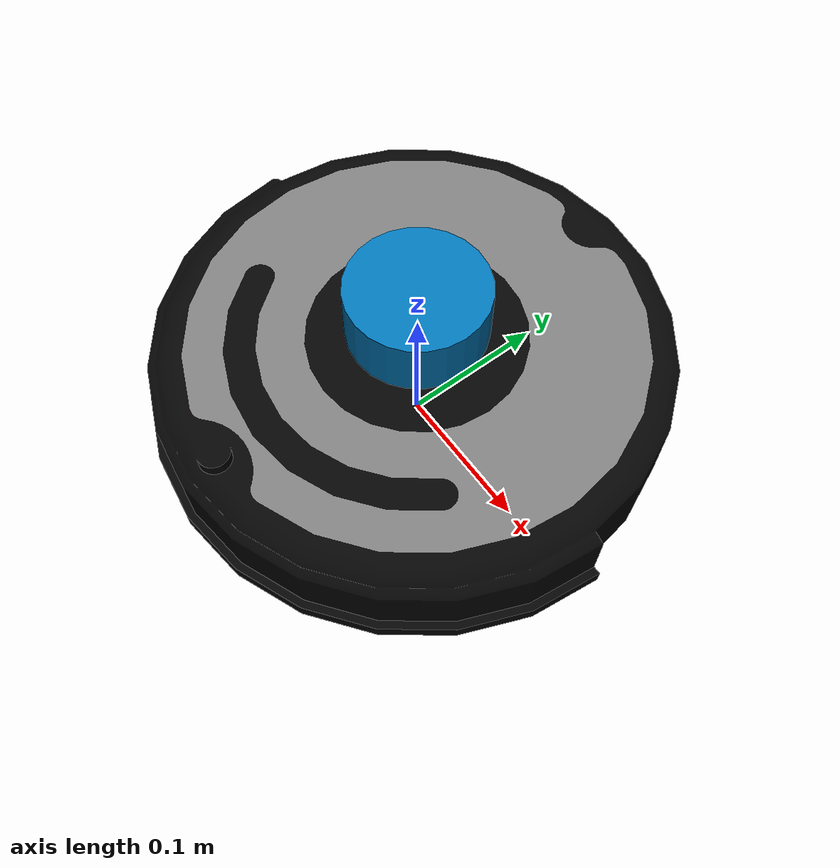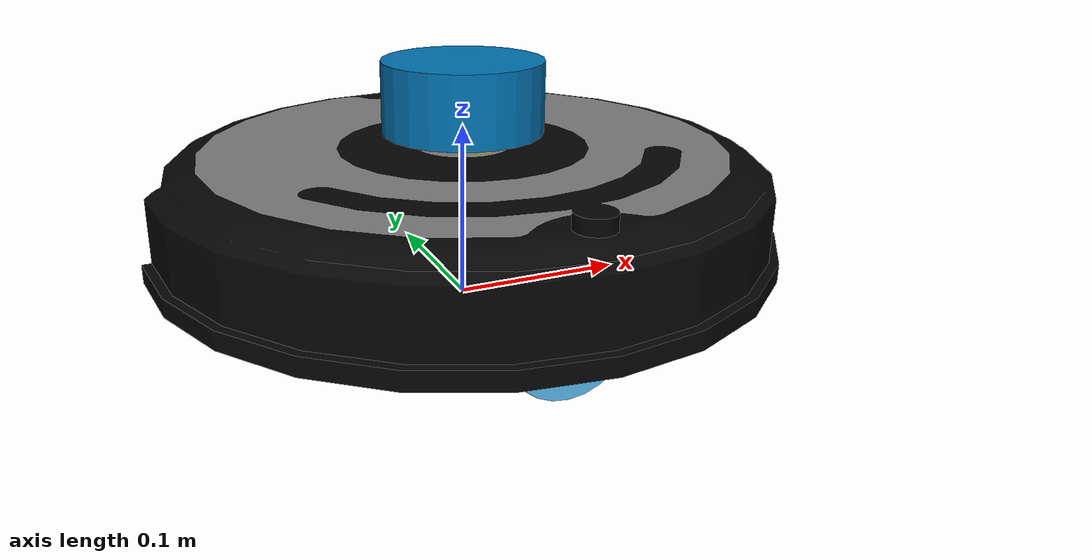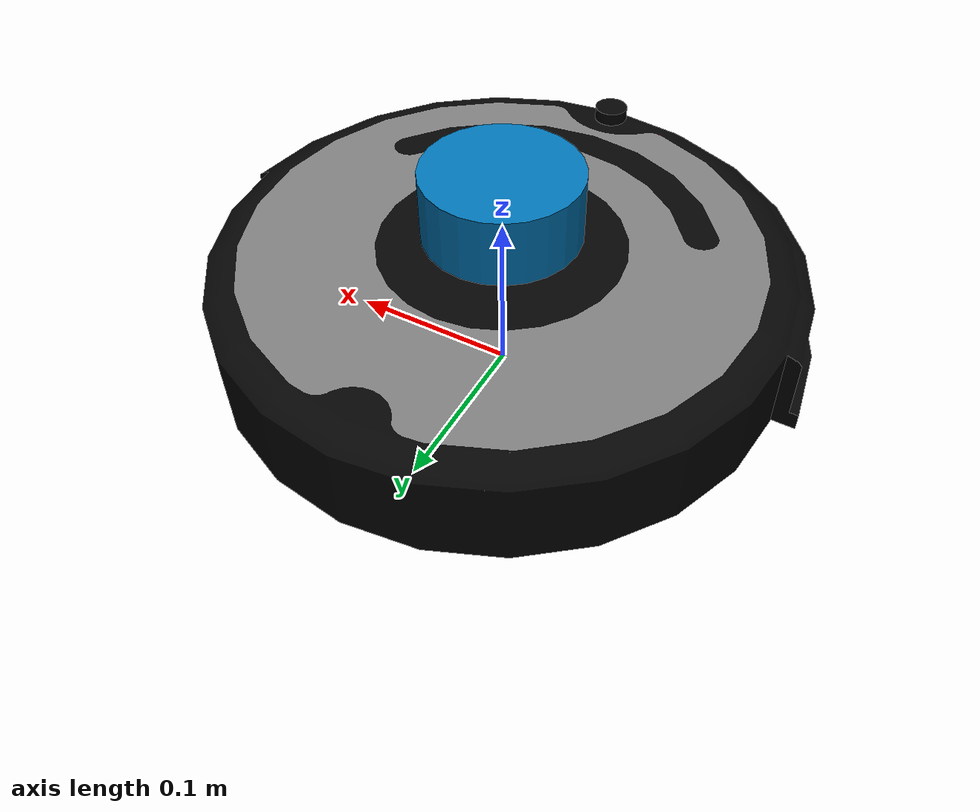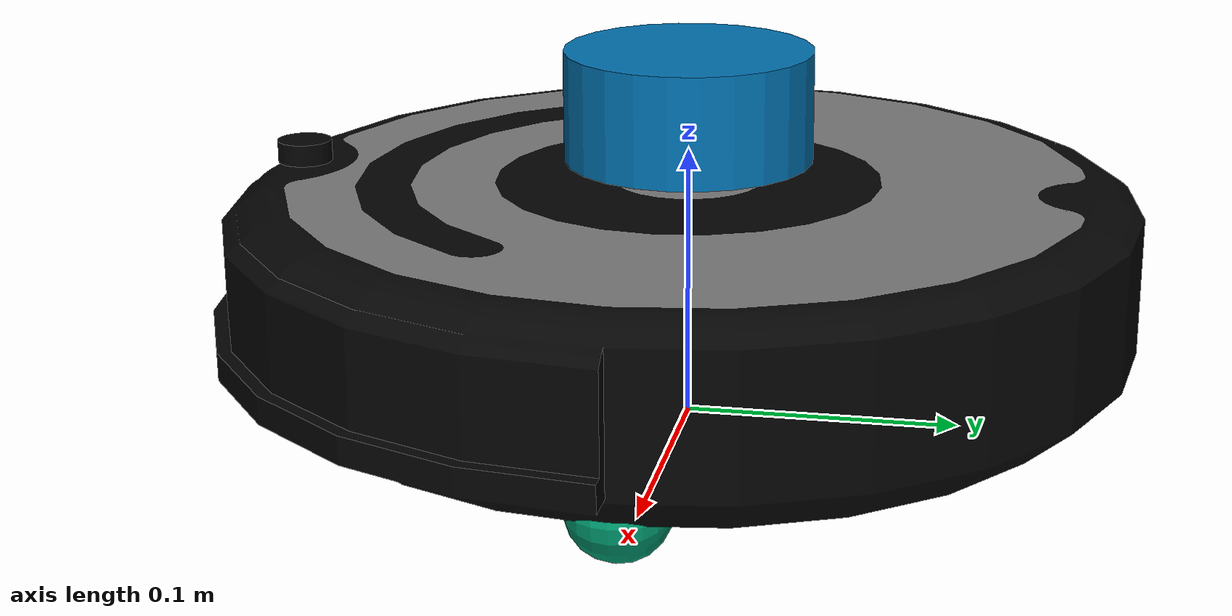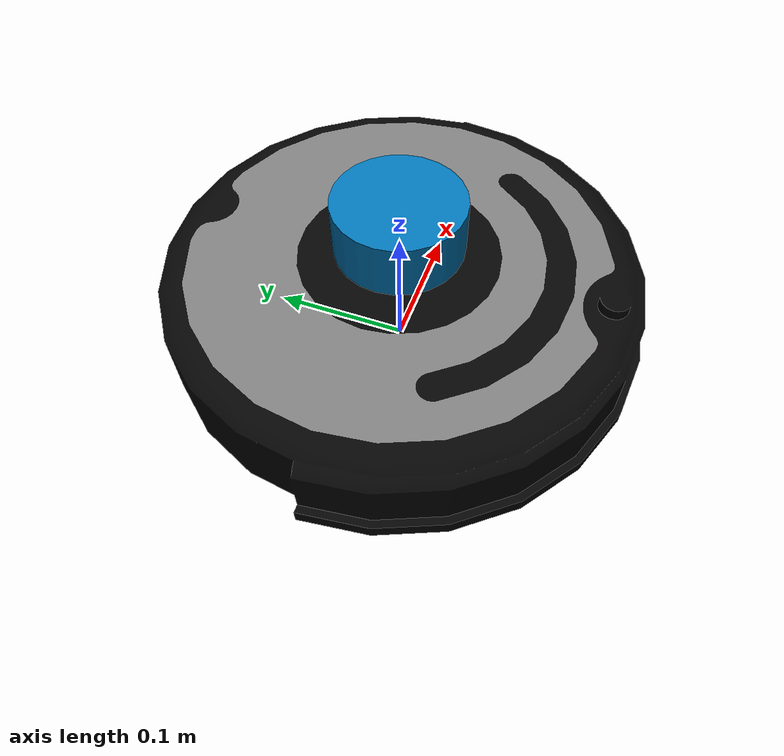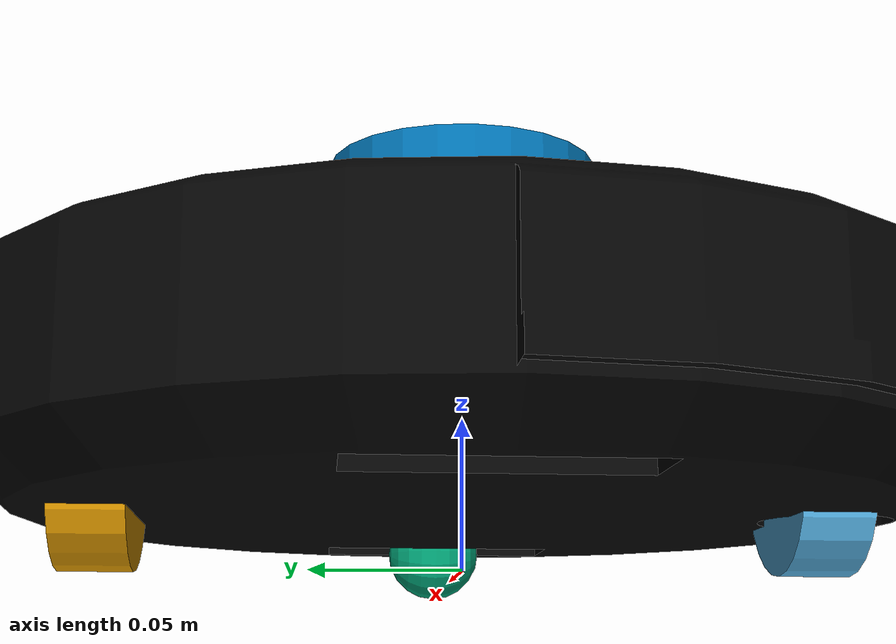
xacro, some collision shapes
<?xml version="1.0" ?>
<robot name="roomba" xmlns:xacro="http://ros.org/wiki/xacro">
  <xacro:include filename="$(find create_description)/urdf/create_2.urdf.xacro" />
  <xacro:include filename="$(find office_bot_description)/urdf/hokuyo.urdf.xacro" />
  <xacro:include filename="$(find office_bot_description)/urdf/carpet_cam.urdf.xacro" />

  <xacro:hokuyo_laser xyz="0 0 0.1" rpy="0 0 0" parent="base_link" />

  <!-- gazebo: ground truth pose publisher -->
  <gazebo>
      <plugin name="p3d_base_controller" filename="libgazebo_ros_p3d.so">
          <alwaysOn>true</alwaysOn>
          <updateRate>50.0</updateRate>
          <bodyName>base_link</bodyName>
          <topicName>ground_truth/state</topicName>
          <frameName>map</frameName>
      </plugin>
  </gazebo>
</robot>

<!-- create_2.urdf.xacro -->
<robot name="create_2" xmlns:xacro="http://ros.org/wiki/xacro">
  <xacro:include filename="$(find ca_description)/urdf/create_base.urdf.xacro" />
  <xacro:include filename="$(find ca_description)/urdf/create_2_gazebo.urdf.xacro" />

  <xacro:create_base wheel_separation="0.235" base_diameter="0.3485" wheel_radius="0.033">
    <mesh filename="package://ca_description/meshes/create_2.dae" />
  </xacro:create_base>
</robot>

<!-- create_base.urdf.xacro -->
<robot xmlns:xacro="http://ros.org/wiki/xacro">

  <xacro:macro name="create_base" params="diffdrive_update_rate:=40 wheel_separation wheel_radius:=0.036 wheel_width:=0.024 wheel_torque:=0.5 wheel_accel:=0.5 mass_kg:=3.5 base_diameter *mesh visualize:=false">

    <xacro:include filename="$(find ca_description)/urdf/create_base_gazebo.urdf.xacro"/>
    <xacro:include filename="$(find ca_description)/urdf/create_caster_wheel.xacro"/>
    <xacro:include filename="$(find ca_description)/urdf/create_wheel.xacro"/>
    <xacro:include filename="$(find ca_description)/urdf/sensors/imu_sensor.xacro"/>
    <xacro:include filename="$(find ca_description)/urdf/sensors/wall_sensor.xacro"/>
    <xacro:include filename="$(find ca_description)/urdf/sensors/cliff_sensors.xacro"/>

    <link name="base_footprint">
    <visual>
      <origin xyz="0 0 0" rpy="0 0 0" />
      <geometry>
        <box size="0.001 0.001 0.001" />
      </geometry>
      <material name="Green" />
    </visual>

    <collision>
      <origin xyz="0 0 0.017" rpy="0 0 0" />
      <geometry>
        <box size="0.001 0.001 0.001" />
      </geometry>
    </collision>
    </link>

    <link name="base_link">
      <inertial>
        <mass value="2" />
        <origin xyz="0 0 0.0" />
        <inertia ixx="0.01" ixy="0.0" ixz="0.0" iyy="0.01" iyz="0.0" izz="0.5" />
      </inertial>

      <visual>
        <origin xyz=" 0 0 0.0308" rpy="0 0 0" />
        <geometry>
          <xacro:insert_block name="mesh" />
        </geometry>
      </visual>

      <collision>
        <origin xyz="0.0 0.0 0.0308" rpy="0 0 0" />
        <geometry>
          <cylinder length="0.0611632" radius="0.16495" />
        </geometry>
      </collision>
    </link>

    <joint name="base_footprint_joint" type="fixed">
      <origin xyz="0 0 0.017" rpy="0 0 0" />
      <parent link="base_footprint" />
      <child link="base_link" />
    </joint>

    <xacro:wall_sensor visualize="${visualize}"/>
    <xacro:cliff_sensors visualize="${visualize}"/>
    <xacro:imu_sensor/>

    <xacro:create_wheel prefix="left" y_offset="${wheel_separation / 2}" wheel_radius="${wheel_radius}" wheel_width="${wheel_width}"/>
    <xacro:create_wheel prefix="right" y_offset="${wheel_separation / -2}" wheel_radius="${wheel_radius}" wheel_width="${wheel_width}"/>
    <xacro:caster_wheel/>

    <!-- Simulation sensors -->
    <xacro:sim_create_base/>
  </xacro:macro>
</robot>

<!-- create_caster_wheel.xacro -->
<robot xmlns:xacro="http://ros.org/wiki/xacro">

<xacro:macro name="caster_wheel">

  <xacro:include filename="$(find ca_description)/urdf/common_properties.xacro"/>

  <xacro:property name="link_name" value="caster_wheel_link"/>
  <xacro:property name="parent_link" value="base_link"/>

  <xacro:property name="x" value="0.13"/>
  <xacro:property name="y" value="0"/>
  <xacro:property name="z" value="0"/>
  <xacro:property name="R" value="0"/>
  <xacro:property name="P" value="${pi/2}"/>
  <xacro:property name="Y" value="${pi/2}"/>

  <xacro:property name="radius" value="0.018"/>

  <link name="${link_name}">
    <xacro:dummy_inertia/>

    <visual>
      <origin xyz="0 0 0" rpy="${R} ${P} ${Y}" />
      <geometry>
        <sphere radius="${radius}" />
      </geometry>
    </visual>

    <collision>
      <origin xyz="0 0 0" rpy="${R} ${P} ${Y}" />
      <geometry>
        <sphere radius="${radius}" />
      </geometry>
    </collision>
  </link>

  <!-- fixed because there's no transmission -->
  <joint name="front_castor_joint" type="fixed">
    <origin xyz="${x} ${y} ${z}" rpy="0 0 0" />
    <parent link="${parent_link}" />
    <child link="${link_name}" />
    <axis xyz="0 1 0" />
  </joint>

</xacro:macro>

</robot>

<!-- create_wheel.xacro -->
<robot xmlns:xacro="http://ros.org/wiki/xacro">

<xacro:macro name="create_wheel" params="prefix y_offset wheel_radius wheel_width">

  <xacro:include filename="$(find ca_description)/urdf/common_properties.xacro"/>

  <xacro:property name="x" value="0"/>
  <xacro:property name="y" value="${y_offset}"/>
  <xacro:property name="z" value="0.015"/>
  <xacro:property name="R" value="0"/>
  <xacro:property name="P" value="${pi/2}"/>
  <xacro:property name="Y" value="${pi/2}"/>

  <link name="${prefix}_wheel_link">
    <xacro:dummy_inertia/>

    <visual>
      <origin xyz="0 0 0" rpy="${R} ${P} ${Y}" />
      <geometry>
        <cylinder radius="${wheel_radius}" length="${wheel_width}" />
      </geometry>
    </visual>

    <collision>
      <origin xyz="0 0 0" rpy="${R} ${P} ${Y}" />
      <geometry>
        <cylinder radius="${wheel_radius}" length="${wheel_width}" />
      </geometry>
    </collision>
  </link>

 <joint name="${prefix}_wheel_joint" type="continuous">
    <origin xyz="${x} ${y} ${z}" rpy="0 0 0" />
    <parent link="base_link" />
    <child link="${prefix}_wheel_link" />
    <axis xyz="0 1 0" />
  </joint>
</xacro:macro>

</robot>

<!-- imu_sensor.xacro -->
<robot xmlns:xacro="http://ros.org/wiki/xacro">

<xacro:macro name="imu_sensor">

  <xacro:include filename="$(find ca_description)/urdf/common_properties.xacro"/>
  <xacro:include filename="$(find ca_description)/urdf/sensors/imu_sensor_gazebo.xacro"/>

  <xacro:property name="parent_link" value="base_link"/>
  <xacro:property name="link_name" value="gyro_link"/>

  <xacro:property name="x" value="0"/>
  <xacro:property name="y" value="0"/>
  <xacro:property name="z" value="0.04"/>
  <xacro:property name="R" value="0"/>
  <xacro:property name="P" value="0"/>
  <xacro:property name="Y" value="0"/>

  <joint name="gyro_joint" type="fixed">
    <axis xyz="0 1 0" />
    <origin xyz="${x} ${y} ${z}" rpy="${R} ${P} ${Y}"/>
    <parent link="${parent_link}" />
    <child link="${link_name}" />
  </joint>

  <link name="${link_name}">
    <xacro:dummy_inertia/>
  </link>

  <xacro:sim_imu/>

</xacro:macro>

</robot>

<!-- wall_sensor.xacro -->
<robot xmlns:xacro="http://ros.org/wiki/xacro">

<xacro:macro name="wall_sensor" params="visualize:=false">

  <xacro:include filename="$(find ca_description)/urdf/common_properties.xacro"/>
  <xacro:include filename="$(find ca_description)/urdf/sensors/wall_sensor_gazebo.xacro"/>

  <xacro:property name="x" value="0.09"/>
  <xacro:property name="y" value="-0.120"/>
  <xacro:property name="z" value="0.042"/>
  <xacro:property name="R" value="0"/>
  <xacro:property name="P" value="0"/>
  <xacro:property name="Y" value="-1.0"/>

  <xacro:property name="parent_link" value="base_link"/>

  <joint name="base_wall_sensor_joint" type="fixed">
    <origin xyz="${x} ${y} ${z}" rpy="${R} ${P} ${Y}" />
    <parent link="${parent_link}" />
    <child link="wall_sensor_link" />
  </joint>

  <link name="wall_sensor_link">
    <xacro:dummy_inertia/>
  </link>

  <xacro:sim_create_wall_sensor visualize="${visualize}"/>

</xacro:macro>

</robot>

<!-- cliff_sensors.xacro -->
<robot xmlns:xacro="http://ros.org/wiki/xacro">

<xacro:macro name="cliff_sensors" params="visualize:=false">

  <xacro:include filename="$(find ca_description)/urdf/common_properties.xacro"/>
  <xacro:include filename="$(find ca_description)/urdf/sensors/cliff_sensors_gazebo.xacro"/>

  <xacro:property name="parent_link" value="base_link"/>

  <xacro:property name="name_side_left" value="side_left"/>
  <xacro:property name="name_side_right" value="side_right"/>
  <xacro:property name="name_front_left" value="front_left"/>
  <xacro:property name="name_front_right" value="front_right"/>

  <joint name="${name_side_left}_cliff_sensor_joint" type="fixed">
    <origin xyz="0.07 0.14 0.01" rpy="0 ${pi/2} 0" />
    <parent link="${parent_link}" />
    <child link="${name_side_left}_cliff_sensor_link" />
  </joint>

  <joint name="${name_side_right}_cliff_sensor_joint" type="fixed">
    <origin xyz="0.07 -0.14 0.01" rpy="0 ${pi/2} 0" />
    <parent link="${parent_link}" />
    <child link="${name_side_right}_cliff_sensor_link" />
  </joint>

  <joint name="${name_front_left}_front_cliff_sensor_joint" type="fixed">
    <origin xyz="0.15 0.04 0.01" rpy="0 ${pi/2} 0" />
    <parent link="${parent_link}" />
    <child link="${name_front_left}_cliff_sensor_link" />
  </joint>

  <joint name="${name_front_right}_cliff_sensor_joint" type="fixed">
    <origin xyz="0.15 -0.04 0.01" rpy="0 ${pi/2} 0" />
    <parent link="${parent_link}" />
    <child link="${name_front_right}_cliff_sensor_link" />
  </joint>

  <link name="${name_side_left}_cliff_sensor_link">
    <xacro:dummy_inertia/>
  </link>

  <link name="${name_side_right}_cliff_sensor_link">
    <xacro:dummy_inertia/>
  </link>

  <link name="${name_front_left}_cliff_sensor_link">
    <xacro:dummy_inertia/>
  </link>

  <link name="${name_front_right}_cliff_sensor_link">
    <xacro:dummy_inertia/>
  </link>

  <xacro:sim_create_cliff_sensors visualize="${visualize}"/>

</xacro:macro>

</robot>

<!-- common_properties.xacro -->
<robot xmlns:xacro="http://ros.org/wiki/xacro">

<xacro:macro name="dummy_inertia">
  <inertial>
    <mass value="0.01" />
    <origin xyz="0 0 0" />
    <inertia ixx="0.001" ixy="0.0" ixz="0.0" iyy="0.001" iyz="0.0" izz="0.001" />
  </inertial>
</xacro:macro>

</robot>

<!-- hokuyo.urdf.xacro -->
<!-- Hokuyo macro. Copied with modifications from https://github.com/CentroEPiaggio/irobotcreate2ros/raw/master/model/hokuyo.urdf.xacro -->
<robot xmlns:xacro="http://ros.org/wiki/xacro" name="hokuyo">

    <xacro:macro name="hokuyo_laser" params="xyz rpy parent">
        <joint name="laser_joint" type="fixed">
            <axis xyz="0 0 1" />
            <origin xyz="${xyz}" rpy="${rpy}" />
            <parent link="${parent}" />
            <child link="laser_link" />
        </joint>

        <link name="laser_link">
            <collision>
                <origin xyz="0 0 0" rpy="0 0 0" />
                <geometry>
                    <cylinder length="0.04" radius="0.045" />
                </geometry>
            </collision>
            <visual>
                <origin xyz="0 0 0" rpy="0 0 0" />
                <geometry>
                    <mesh filename="package://office_bot_description/meshes/hokuyo.dae" />
                </geometry>
            </visual>
            <inertial>
                <mass value="1e-5" />
                <origin xyz="0 0 0" rpy="0 0 0" />
                <inertia ixx="1e-6" ixy="0" ixz="0" iyy="1e-6" iyz="0" izz="1e-6" />
            </inertial>
        </link>

        <gazebo reference="laser_link">
            <gravity>true</gravity>
            <sensor type="ray" name="laser">
                <pose>0 0 0 0 0 0</pose>
                <visualize>false</visualize>
                <update_rate>40</update_rate>
                <ray>
                    <scan>
                        <horizontal>
                            <samples>1080</samples>
                            <resolution>1</resolution>
                            <min_angle>-2.3562</min_angle>
                            <max_angle>2.3562</max_angle>
                        </horizontal>
                    </scan>
                    <range>
                        <min>0.10</min>
                        <max>30.0</max>
                        <resolution>0.01</resolution>
                    </range>
                </ray>
                <plugin name="gazebo_ros_laser" filename="libgazebo_ros_laser.so">
                    <robotNamespace>/</robotNamespace>
                    <topicName>scan</topicName>
                    <frameName>laser_link</frameName>
                </plugin>
            </sensor>
        </gazebo>

    </xacro:macro>

</robot>

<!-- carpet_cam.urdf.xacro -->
<!--  floor-facing camera for carpet localisation-->
<robot xmlns:xacro="http://ros.org/wiki/xacro" name="carpet_cam">

    <link name="camera_link">
        <collision>
            <origin xyz="0 0 0" rpy="0 0 0" />
            <geometry>
                <box size="0.02 0.04 0.04" />
            </geometry>
        </collision>

        <visual>
            <origin xyz="0 0 0" rpy="0 0 0" />
            <geometry>
                <box size="0.02 0.04 0.04" />
            </geometry>
            <material name="red" />
        </visual>

        <inertial>
            <mass value="1e-5" />
            <origin xyz="0 0 0" rpy="0 0 0" />
            <inertia ixx="1e-6" ixy="0" ixz="0" iyy="1e-6" iyz="0" izz="1e-6" />
        </inertial>
    </link>

    <joint name="camera_joint" type="fixed">
        <axis xyz="0 1 0" />
        <origin xyz="0 0 0.03" rpy="0 1.5707963 0" />
        <parent link="base_link" />
        <child link="camera_link" />
    </joint>

    <gazebo reference="camera_link">
        <sensor type="camera" name="carpet_cam">
            <update_rate>10.0</update_rate>
            <camera name="head">
                <horizontal_fov>0.523598</horizontal_fov>
                <image>
                    <width>640</width>
                    <height>480</height>
                    <format>R8G8B8</format>
                </image>
                <clip>
                    <near>0.04</near>
                    <far>1</far>
                </clip>
                <noise>
                    <type>gaussian</type>
                    <!-- Noise is sampled independently per pixel on each frame.
               That pixel's noise value is added to each of its color
               channels, which at that point lie in the range [0,1]. -->
                    <mean>0.0</mean>
                    <stddev>0.007</stddev>
                </noise>
            </camera>
            <plugin name="camera_controller" filename="libgazebo_ros_camera.so">
                <alwaysOn>true</alwaysOn>
                <updateRate>0.0</updateRate>
                <cameraName>carpet_cam</cameraName>
                <imageTopicName>image_raw</imageTopicName>
                <cameraInfoTopicName>camera_info</cameraInfoTopicName>
                <frameName>camera_link</frameName>
                <hackBaseline>0.07</hackBaseline>
                <distortionK1>0.0</distortionK1>
                <distortionK2>0.0</distortionK2>
                <distortionK3>0.0</distortionK3>
                <distortionT1>0.0</distortionT1>
                <distortionT2>0.0</distortionT2>
            </plugin>
        </sensor>
    </gazebo>
</robot>
